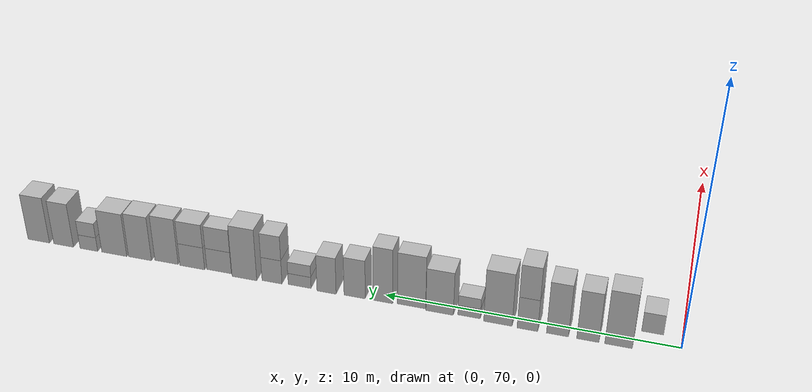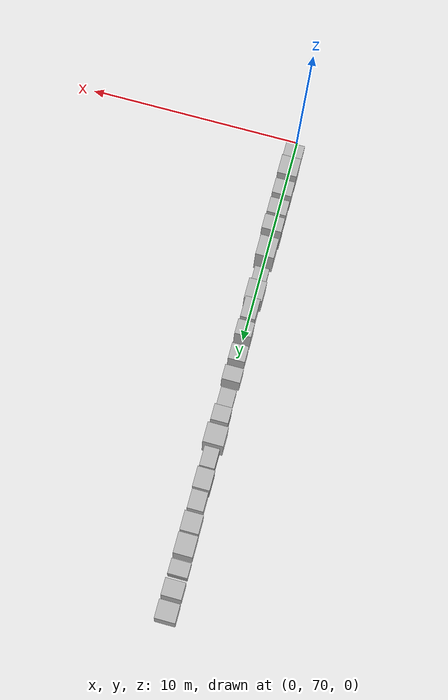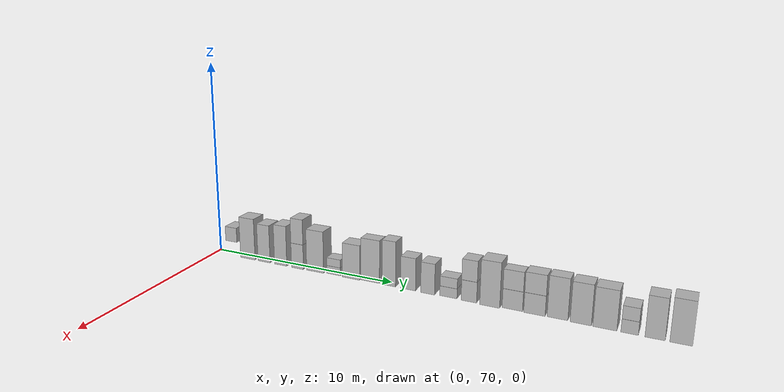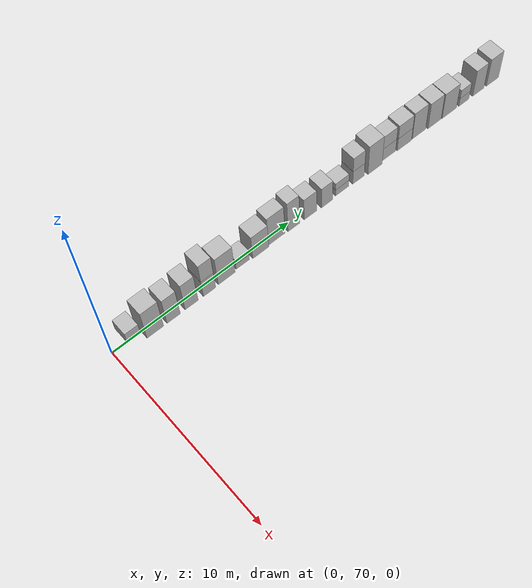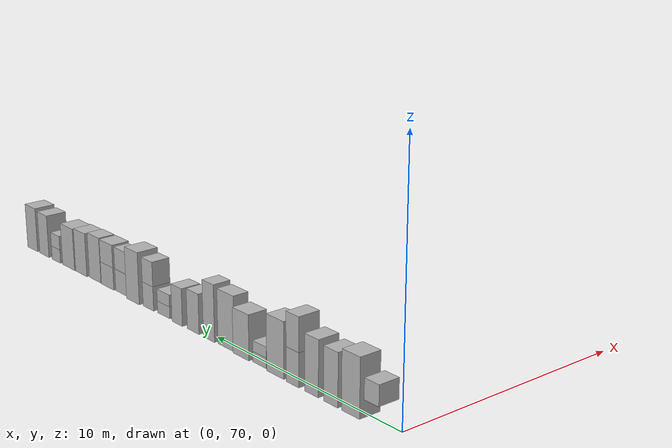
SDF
<sdf version="1.5">
 <world name="default">
  <model name="ground_plane">
   <static>true</static>
   <link name="link">
    <collision name="collision">
     <geometry><plane><normal>0 0 1</normal><size>250 250</size></plane></geometry>
     <surface><friction><ode><mu>1</mu><mu2>1</mu2></ode></friction></surface>
    </collision>
    <visual name="grass">
     <cast_shadows>false</cast_shadows>
     <geometry><mesh><uri>file://grass_plane/meshes/grass_plane.dae</uri></mesh></geometry>
    </visual>
   </link>
  </model>
  <model name="Cardboard_box_top_541">
   <link name="link_0">
    <pose>0 71 0.786534245596 0 0 0</pose>
    <inertial>
     <mass>1</mass>
     <inertia>
      <ixx>0.166667</ixx>
      <ixy>0</ixy>
      <ixz>0</ixz>
      <iyy>0.166667</iyy>
      <iyz>0</iyz>
      <izz>0.166667</izz>
     </inertia>
    </inertial>
    <collision name="collision">
     <geometry>
      <mesh>
       <uri>model://Cardboard_box/meshes/cardboard_box.dae</uri>
       <scale>2.22243146949 1.76237508644 1.96633561399</scale>
      </mesh>
     </geometry>
    </collision>
    <visual name="visual">
     <geometry>
      <mesh>
       <uri>model://Cardboard_box/meshes/cardboard_box.dae</uri>
       <scale>2.22243146949 1.76237508644 1.96633561399</scale>
      </mesh>
     </geometry>
    </visual>
   </link>
   <static>1</static>
  </model>
  <model name="Cardboard_box_542">
   <link name="link_0">
    <pose>0 72 0 0 0 0</pose>
    <inertial>
     <mass>1</mass>
     <inertia>
      <ixx>0.166667</ixx>
      <ixy>0</ixy>
      <ixz>0</ixz>
      <iyy>0.166667</iyy>
      <iyz>0</iyz>
      <izz>0.166667</izz>
     </inertia>
    </inertial>
    <collision name="collision">
     <geometry>
      <mesh>
       <uri>model://Cardboard_box/meshes/cardboard_box.dae</uri>
       <scale>2.27273999263 2.25748142459 5.59448909888</scale>
      </mesh>
     </geometry>
    </collision>
    <visual name="visual">
     <geometry>
      <mesh>
       <uri>model://Cardboard_box/meshes/cardboard_box.dae</uri>
       <scale>2.27273999263 2.25748142459 5.59448909888</scale>
      </mesh>
     </geometry>
    </visual>
   </link>
   <static>1</static>
  </model>
  <model name="Cardboard_box_543">
   <link name="link_0">
    <pose>0 73 0 0 0 0</pose>
    <inertial>
     <mass>1</mass>
     <inertia>
      <ixx>0.166667</ixx>
      <ixy>0</ixy>
      <ixz>0</ixz>
      <iyy>0.166667</iyy>
      <iyz>0</iyz>
      <izz>0.166667</izz>
     </inertia>
    </inertial>
    <collision name="collision">
     <geometry>
      <mesh>
       <uri>model://Cardboard_box/meshes/cardboard_box.dae</uri>
       <scale>2.27920387605 1.83364577513 5.06945876793</scale>
      </mesh>
     </geometry>
    </collision>
    <visual name="visual">
     <geometry>
      <mesh>
       <uri>model://Cardboard_box/meshes/cardboard_box.dae</uri>
       <scale>2.27920387605 1.83364577513 5.06945876793</scale>
      </mesh>
     </geometry>
    </visual>
   </link>
   <static>1</static>
  </model>
  <model name="Cardboard_box_544">
   <link name="link_0">
    <pose>0 74 0 0 0 0</pose>
    <inertial>
     <mass>1</mass>
     <inertia>
      <ixx>0.166667</ixx>
      <ixy>0</ixy>
      <ixz>0</ixz>
      <iyy>0.166667</iyy>
      <iyz>0</iyz>
      <izz>0.166667</izz>
     </inertia>
    </inertial>
    <collision name="collision">
     <geometry>
      <mesh>
       <uri>model://Cardboard_box/meshes/cardboard_box.dae</uri>
       <scale>2.26104952959 1.83376008148 5.36741757266</scale>
      </mesh>
     </geometry>
    </collision>
    <visual name="visual">
     <geometry>
      <mesh>
       <uri>model://Cardboard_box/meshes/cardboard_box.dae</uri>
       <scale>2.26104952959 1.83376008148 5.36741757266</scale>
      </mesh>
     </geometry>
    </visual>
   </link>
   <static>1</static>
  </model>
  <model name="Cardboard_box_545">
   <link name="link_0">
    <pose>0 75 0 0 0 0</pose>
    <inertial>
     <mass>1</mass>
     <inertia>
      <ixx>0.166667</ixx>
      <ixy>0</ixy>
      <ixz>0</ixz>
      <iyy>0.166667</iyy>
      <iyz>0</iyz>
      <izz>0.166667</izz>
     </inertia>
    </inertial>
    <collision name="collision">
     <geometry>
      <mesh>
       <uri>model://Cardboard_box/meshes/cardboard_box.dae</uri>
       <scale>2.31935203963 1.74351807476 3.30247508804</scale>
      </mesh>
     </geometry>
    </collision>
    <visual name="visual">
     <geometry>
      <mesh>
       <uri>model://Cardboard_box/meshes/cardboard_box.dae</uri>
       <scale>2.31935203963 1.74351807476 3.30247508804</scale>
      </mesh>
     </geometry>
    </visual>
   </link>
   <static>1</static>
  </model>
  <model name="Cardboard_box_top_545">
   <link name="link_0">
    <pose>0 75 1.32099003521 0 0 0</pose>
    <inertial>
     <mass>1</mass>
     <inertia>
      <ixx>0.166667</ixx>
      <ixy>0</ixy>
      <ixz>0</ixz>
      <iyy>0.166667</iyy>
      <iyz>0</iyz>
      <izz>0.166667</izz>
     </inertia>
    </inertial>
    <collision name="collision">
     <geometry>
      <mesh>
       <uri>model://Cardboard_box/meshes/cardboard_box.dae</uri>
       <scale>2.31935203963 1.74351807476 3.30247508804</scale>
      </mesh>
     </geometry>
    </collision>
    <visual name="visual">
     <geometry>
      <mesh>
       <uri>model://Cardboard_box/meshes/cardboard_box.dae</uri>
       <scale>2.31935203963 1.74351807476 3.30247508804</scale>
      </mesh>
     </geometry>
    </visual>
   </link>
   <static>1</static>
  </model>
  <model name="Cardboard_box_546">
   <link name="link_0">
    <pose>0 76 0 0 0 0</pose>
    <inertial>
     <mass>1</mass>
     <inertia>
      <ixx>0.166667</ixx>
      <ixy>0</ixy>
      <ixz>0</ixz>
      <iyy>0.166667</iyy>
      <iyz>0</iyz>
      <izz>0.166667</izz>
     </inertia>
    </inertial>
    <collision name="collision">
     <geometry>
      <mesh>
       <uri>model://Cardboard_box/meshes/cardboard_box.dae</uri>
       <scale>2.16315820871 2.4252779616 5.46713787883</scale>
      </mesh>
     </geometry>
    </collision>
    <visual name="visual">
     <geometry>
      <mesh>
       <uri>model://Cardboard_box/meshes/cardboard_box.dae</uri>
       <scale>2.16315820871 2.4252779616 5.46713787883</scale>
      </mesh>
     </geometry>
    </visual>
   </link>
   <static>1</static>
  </model>
  <model name="Cardboard_box_547">
   <link name="link_0">
    <pose>0 77 0 0 0 0</pose>
    <inertial>
     <mass>1</mass>
     <inertia>
      <ixx>0.166667</ixx>
      <ixy>0</ixy>
      <ixz>0</ixz>
      <iyy>0.166667</iyy>
      <iyz>0</iyz>
      <izz>0.166667</izz>
     </inertia>
    </inertial>
    <collision name="collision">
     <geometry>
      <mesh>
       <uri>model://Cardboard_box/meshes/cardboard_box.dae</uri>
       <scale>1.72668834568 1.93948116619 1.03902439038</scale>
      </mesh>
     </geometry>
    </collision>
    <visual name="visual">
     <geometry>
      <mesh>
       <uri>model://Cardboard_box/meshes/cardboard_box.dae</uri>
       <scale>1.72668834568 1.93948116619 1.03902439038</scale>
      </mesh>
     </geometry>
    </visual>
   </link>
   <static>1</static>
  </model>
  <model name="Cardboard_box_top_547">
   <link name="link_0">
    <pose>0 77 0.415609756152 0 0 0</pose>
    <inertial>
     <mass>1</mass>
     <inertia>
      <ixx>0.166667</ixx>
      <ixy>0</ixy>
      <ixz>0</ixz>
      <iyy>0.166667</iyy>
      <iyz>0</iyz>
      <izz>0.166667</izz>
     </inertia>
    </inertial>
    <collision name="collision">
     <geometry>
      <mesh>
       <uri>model://Cardboard_box/meshes/cardboard_box.dae</uri>
       <scale>1.72668834568 1.93948116619 1.03902439038</scale>
      </mesh>
     </geometry>
    </collision>
    <visual name="visual">
     <geometry>
      <mesh>
       <uri>model://Cardboard_box/meshes/cardboard_box.dae</uri>
       <scale>1.72668834568 1.93948116619 1.03902439038</scale>
      </mesh>
     </geometry>
    </visual>
   </link>
   <static>1</static>
  </model>
  <model name="Cardboard_box_548">
   <link name="link_0">
    <pose>0 78 0 0 0 0</pose>
    <inertial>
     <mass>1</mass>
     <inertia>
      <ixx>0.166667</ixx>
      <ixy>0</ixy>
      <ixz>0</ixz>
      <iyy>0.166667</iyy>
      <iyz>0</iyz>
      <izz>0.166667</izz>
     </inertia>
    </inertial>
    <collision name="collision">
     <geometry>
      <mesh>
       <uri>model://Cardboard_box/meshes/cardboard_box.dae</uri>
       <scale>2.08987775018 2.39225351594 4.48436766433</scale>
      </mesh>
     </geometry>
    </collision>
    <visual name="visual">
     <geometry>
      <mesh>
       <uri>model://Cardboard_box/meshes/cardboard_box.dae</uri>
       <scale>2.08987775018 2.39225351594 4.48436766433</scale>
      </mesh>
     </geometry>
    </visual>
   </link>
   <static>1</static>
  </model>
  <model name="Cardboard_box_549">
   <link name="link_0">
    <pose>0 79 0 0 0 0</pose>
    <inertial>
     <mass>1</mass>
     <inertia>
      <ixx>0.166667</ixx>
      <ixy>0</ixy>
      <ixz>0</ixz>
      <iyy>0.166667</iyy>
      <iyz>0</iyz>
      <izz>0.166667</izz>
     </inertia>
    </inertial>
    <collision name="collision">
     <geometry>
      <mesh>
       <uri>model://Cardboard_box/meshes/cardboard_box.dae</uri>
       <scale>1.72093482058 2.4869732673 5.4734018262</scale>
      </mesh>
     </geometry>
    </collision>
    <visual name="visual">
     <geometry>
      <mesh>
       <uri>model://Cardboard_box/meshes/cardboard_box.dae</uri>
       <scale>1.72093482058 2.4869732673 5.4734018262</scale>
      </mesh>
     </geometry>
    </visual>
   </link>
   <static>1</static>
  </model>
  <model name="Cardboard_box_550">
   <link name="link_0">
    <pose>0 80 0 0 0 0</pose>
    <inertial>
     <mass>1</mass>
     <inertia>
      <ixx>0.166667</ixx>
      <ixy>0</ixy>
      <ixz>0</ixz>
      <iyy>0.166667</iyy>
      <iyz>0</iyz>
      <izz>0.166667</izz>
     </inertia>
    </inertial>
    <collision name="collision">
     <geometry>
      <mesh>
       <uri>model://Cardboard_box/meshes/cardboard_box.dae</uri>
       <scale>1.93379157234 1.77051491757 5.73602014364</scale>
      </mesh>
     </geometry>
    </collision>
    <visual name="visual">
     <geometry>
      <mesh>
       <uri>model://Cardboard_box/meshes/cardboard_box.dae</uri>
       <scale>1.93379157234 1.77051491757 5.73602014364</scale>
      </mesh>
     </geometry>
    </visual>
   </link>
   <static>1</static>
  </model>
  <model name="Cardboard_box_551">
   <link name="link_0">
    <pose>0 81 0 0 0 0</pose>
    <inertial>
     <mass>1</mass>
     <inertia>
      <ixx>0.166667</ixx>
      <ixy>0</ixy>
      <ixz>0</ixz>
      <iyy>0.166667</iyy>
      <iyz>0</iyz>
      <izz>0.166667</izz>
     </inertia>
    </inertial>
    <collision name="collision">
     <geometry>
      <mesh>
       <uri>model://Cardboard_box/meshes/cardboard_box.dae</uri>
       <scale>1.96736491615 1.91165425711 4.08183193037</scale>
      </mesh>
     </geometry>
    </collision>
    <visual name="visual">
     <geometry>
      <mesh>
       <uri>model://Cardboard_box/meshes/cardboard_box.dae</uri>
       <scale>1.96736491615 1.91165425711 4.08183193037</scale>
      </mesh>
     </geometry>
    </visual>
   </link>
   <static>1</static>
  </model>
  <model name="Cardboard_box_552">
   <link name="link_0">
    <pose>0 82 0 0 0 0</pose>
    <inertial>
     <mass>1</mass>
     <inertia>
      <ixx>0.166667</ixx>
      <ixy>0</ixy>
      <ixz>0</ixz>
      <iyy>0.166667</iyy>
      <iyz>0</iyz>
      <izz>0.166667</izz>
     </inertia>
    </inertial>
    <collision name="collision">
     <geometry>
      <mesh>
       <uri>model://Cardboard_box/meshes/cardboard_box.dae</uri>
       <scale>2.14970825815 1.73907848819 3.85460406056</scale>
      </mesh>
     </geometry>
    </collision>
    <visual name="visual">
     <geometry>
      <mesh>
       <uri>model://Cardboard_box/meshes/cardboard_box.dae</uri>
       <scale>2.14970825815 1.73907848819 3.85460406056</scale>
      </mesh>
     </geometry>
    </visual>
   </link>
   <static>1</static>
  </model>
  <model name="Cardboard_box_553">
   <link name="link_0">
    <pose>0 83 0 0 0 0</pose>
    <inertial>
     <mass>1</mass>
     <inertia>
      <ixx>0.166667</ixx>
      <ixy>0</ixy>
      <ixz>0</ixz>
      <iyy>0.166667</iyy>
      <iyz>0</iyz>
      <izz>0.166667</izz>
     </inertia>
    </inertial>
    <collision name="collision">
     <geometry>
      <mesh>
       <uri>model://Cardboard_box/meshes/cardboard_box.dae</uri>
       <scale>1.83003617201 2.10910806651 1.22664083777</scale>
      </mesh>
     </geometry>
    </collision>
    <visual name="visual">
     <geometry>
      <mesh>
       <uri>model://Cardboard_box/meshes/cardboard_box.dae</uri>
       <scale>1.83003617201 2.10910806651 1.22664083777</scale>
      </mesh>
     </geometry>
    </visual>
   </link>
   <static>1</static>
  </model>
  <model name="Cardboard_box_top_553">
   <link name="link_0">
    <pose>0 83 0.49065633511 0 0 0</pose>
    <inertial>
     <mass>1</mass>
     <inertia>
      <ixx>0.166667</ixx>
      <ixy>0</ixy>
      <ixz>0</ixz>
      <iyy>0.166667</iyy>
      <iyz>0</iyz>
      <izz>0.166667</izz>
     </inertia>
    </inertial>
    <collision name="collision">
     <geometry>
      <mesh>
       <uri>model://Cardboard_box/meshes/cardboard_box.dae</uri>
       <scale>1.83003617201 2.10910806651 1.22664083777</scale>
      </mesh>
     </geometry>
    </collision>
    <visual name="visual">
     <geometry>
      <mesh>
       <uri>model://Cardboard_box/meshes/cardboard_box.dae</uri>
       <scale>1.83003617201 2.10910806651 1.22664083777</scale>
      </mesh>
     </geometry>
    </visual>
   </link>
   <static>1</static>
  </model>
  <model name="Cardboard_box_554">
   <link name="link_0">
    <pose>0 84 0 0 0 0</pose>
    <inertial>
     <mass>1</mass>
     <inertia>
      <ixx>0.166667</ixx>
      <ixy>0</ixy>
      <ixz>0</ixz>
      <iyy>0.166667</iyy>
      <iyz>0</iyz>
      <izz>0.166667</izz>
     </inertia>
    </inertial>
    <collision name="collision">
     <geometry>
      <mesh>
       <uri>model://Cardboard_box/meshes/cardboard_box.dae</uri>
       <scale>2.04126254588 1.85270935831 2.54384727338</scale>
      </mesh>
     </geometry>
    </collision>
    <visual name="visual">
     <geometry>
      <mesh>
       <uri>model://Cardboard_box/meshes/cardboard_box.dae</uri>
       <scale>2.04126254588 1.85270935831 2.54384727338</scale>
      </mesh>
     </geometry>
    </visual>
   </link>
   <static>1</static>
  </model>
  <model name="Cardboard_box_top_554">
   <link name="link_0">
    <pose>0 84 1.01753890935 0 0 0</pose>
    <inertial>
     <mass>1</mass>
     <inertia>
      <ixx>0.166667</ixx>
      <ixy>0</ixy>
      <ixz>0</ixz>
      <iyy>0.166667</iyy>
      <iyz>0</iyz>
      <izz>0.166667</izz>
     </inertia>
    </inertial>
    <collision name="collision">
     <geometry>
      <mesh>
       <uri>model://Cardboard_box/meshes/cardboard_box.dae</uri>
       <scale>2.04126254588 1.85270935831 2.54384727338</scale>
      </mesh>
     </geometry>
    </collision>
    <visual name="visual">
     <geometry>
      <mesh>
       <uri>model://Cardboard_box/meshes/cardboard_box.dae</uri>
       <scale>2.04126254588 1.85270935831 2.54384727338</scale>
      </mesh>
     </geometry>
    </visual>
   </link>
   <static>1</static>
  </model>
  <model name="Cardboard_box_555">
   <link name="link_0">
    <pose>0 85 0 0 0 0</pose>
    <inertial>
     <mass>1</mass>
     <inertia>
      <ixx>0.166667</ixx>
      <ixy>0</ixy>
      <ixz>0</ixz>
      <iyy>0.166667</iyy>
      <iyz>0</iyz>
      <izz>0.166667</izz>
     </inertia>
    </inertial>
    <collision name="collision">
     <geometry>
      <mesh>
       <uri>model://Cardboard_box/meshes/cardboard_box.dae</uri>
       <scale>2.40320530163 2.31998849345 5.49364410006</scale>
      </mesh>
     </geometry>
    </collision>
    <visual name="visual">
     <geometry>
      <mesh>
       <uri>model://Cardboard_box/meshes/cardboard_box.dae</uri>
       <scale>2.40320530163 2.31998849345 5.49364410006</scale>
      </mesh>
     </geometry>
    </visual>
   </link>
   <static>1</static>
  </model>
  <model name="Cardboard_box_556">
   <link name="link_0">
    <pose>0 86 0 0 0 0</pose>
    <inertial>
     <mass>1</mass>
     <inertia>
      <ixx>0.166667</ixx>
      <ixy>0</ixy>
      <ixz>0</ixz>
      <iyy>0.166667</iyy>
      <iyz>0</iyz>
      <izz>0.166667</izz>
     </inertia>
    </inertial>
    <collision name="collision">
     <geometry>
      <mesh>
       <uri>model://Cardboard_box/meshes/cardboard_box.dae</uri>
       <scale>1.75762332393 2.32527644797 2.33850517873</scale>
      </mesh>
     </geometry>
    </collision>
    <visual name="visual">
     <geometry>
      <mesh>
       <uri>model://Cardboard_box/meshes/cardboard_box.dae</uri>
       <scale>1.75762332393 2.32527644797 2.33850517873</scale>
      </mesh>
     </geometry>
    </visual>
   </link>
   <static>1</static>
  </model>
  <model name="Cardboard_box_top_556">
   <link name="link_0">
    <pose>0 86 0.935402071492 0 0 0</pose>
    <inertial>
     <mass>1</mass>
     <inertia>
      <ixx>0.166667</ixx>
      <ixy>0</ixy>
      <ixz>0</ixz>
      <iyy>0.166667</iyy>
      <iyz>0</iyz>
      <izz>0.166667</izz>
     </inertia>
    </inertial>
    <collision name="collision">
     <geometry>
      <mesh>
       <uri>model://Cardboard_box/meshes/cardboard_box.dae</uri>
       <scale>1.75762332393 2.32527644797 2.33850517873</scale>
      </mesh>
     </geometry>
    </collision>
    <visual name="visual">
     <geometry>
      <mesh>
       <uri>model://Cardboard_box/meshes/cardboard_box.dae</uri>
       <scale>1.75762332393 2.32527644797 2.33850517873</scale>
      </mesh>
     </geometry>
    </visual>
   </link>
   <static>1</static>
  </model>
  <model name="Cardboard_box_557">
   <link name="link_0">
    <pose>0 87 0 0 0 0</pose>
    <inertial>
     <mass>1</mass>
     <inertia>
      <ixx>0.166667</ixx>
      <ixy>0</ixy>
      <ixz>0</ixz>
      <iyy>0.166667</iyy>
      <iyz>0</iyz>
      <izz>0.166667</izz>
     </inertia>
    </inertial>
    <collision name="collision">
     <geometry>
      <mesh>
       <uri>model://Cardboard_box/meshes/cardboard_box.dae</uri>
       <scale>2.00411682283 2.37967496607 2.4186702359</scale>
      </mesh>
     </geometry>
    </collision>
    <visual name="visual">
     <geometry>
      <mesh>
       <uri>model://Cardboard_box/meshes/cardboard_box.dae</uri>
       <scale>2.00411682283 2.37967496607 2.4186702359</scale>
      </mesh>
     </geometry>
    </visual>
   </link>
   <static>1</static>
  </model>
  <model name="Cardboard_box_top_557">
   <link name="link_0">
    <pose>0 87 0.967468094361 0 0 0</pose>
    <inertial>
     <mass>1</mass>
     <inertia>
      <ixx>0.166667</ixx>
      <ixy>0</ixy>
      <ixz>0</ixz>
      <iyy>0.166667</iyy>
      <iyz>0</iyz>
      <izz>0.166667</izz>
     </inertia>
    </inertial>
    <collision name="collision">
     <geometry>
      <mesh>
       <uri>model://Cardboard_box/meshes/cardboard_box.dae</uri>
       <scale>2.00411682283 2.37967496607 2.4186702359</scale>
      </mesh>
     </geometry>
    </collision>
    <visual name="visual">
     <geometry>
      <mesh>
       <uri>model://Cardboard_box/meshes/cardboard_box.dae</uri>
       <scale>2.00411682283 2.37967496607 2.4186702359</scale>
      </mesh>
     </geometry>
    </visual>
   </link>
   <static>1</static>
  </model>
  <model name="Cardboard_box_558">
   <link name="link_0">
    <pose>0 88 0 0 0 0</pose>
    <inertial>
     <mass>1</mass>
     <inertia>
      <ixx>0.166667</ixx>
      <ixy>0</ixy>
      <ixz>0</ixz>
      <iyy>0.166667</iyy>
      <iyz>0</iyz>
      <izz>0.166667</izz>
     </inertia>
    </inertial>
    <collision name="collision">
     <geometry>
      <mesh>
       <uri>model://Cardboard_box/meshes/cardboard_box.dae</uri>
       <scale>1.87134853642 2.25476277438 4.90588126137</scale>
      </mesh>
     </geometry>
    </collision>
    <visual name="visual">
     <geometry>
      <mesh>
       <uri>model://Cardboard_box/meshes/cardboard_box.dae</uri>
       <scale>1.87134853642 2.25476277438 4.90588126137</scale>
      </mesh>
     </geometry>
    </visual>
   </link>
   <static>1</static>
  </model>
  <model name="Cardboard_box_559">
   <link name="link_0">
    <pose>0 89 0 0 0 0</pose>
    <inertial>
     <mass>1</mass>
     <inertia>
      <ixx>0.166667</ixx>
      <ixy>0</ixy>
      <ixz>0</ixz>
      <iyy>0.166667</iyy>
      <iyz>0</iyz>
      <izz>0.166667</izz>
     </inertia>
    </inertial>
    <collision name="collision">
     <geometry>
      <mesh>
       <uri>model://Cardboard_box/meshes/cardboard_box.dae</uri>
       <scale>2.16831405858 2.24850722092 4.73773633212</scale>
      </mesh>
     </geometry>
    </collision>
    <visual name="visual">
     <geometry>
      <mesh>
       <uri>model://Cardboard_box/meshes/cardboard_box.dae</uri>
       <scale>2.16831405858 2.24850722092 4.73773633212</scale>
      </mesh>
     </geometry>
    </visual>
   </link>
   <static>1</static>
  </model>
  <model name="Cardboard_box_560">
   <link name="link_0">
    <pose>0 90 0 0 0 0</pose>
    <inertial>
     <mass>1</mass>
     <inertia>
      <ixx>0.166667</ixx>
      <ixy>0</ixy>
      <ixz>0</ixz>
      <iyy>0.166667</iyy>
      <iyz>0</iyz>
      <izz>0.166667</izz>
     </inertia>
    </inertial>
    <collision name="collision">
     <geometry>
      <mesh>
       <uri>model://Cardboard_box/meshes/cardboard_box.dae</uri>
       <scale>2.24022421006 2.47232390862 4.61097409316</scale>
      </mesh>
     </geometry>
    </collision>
    <visual name="visual">
     <geometry>
      <mesh>
       <uri>model://Cardboard_box/meshes/cardboard_box.dae</uri>
       <scale>2.24022421006 2.47232390862 4.61097409316</scale>
      </mesh>
     </geometry>
    </visual>
   </link>
   <static>1</static>
  </model>
  <model name="Cardboard_box_561">
   <link name="link_0">
    <pose>0 91 0 0 0 0</pose>
    <inertial>
     <mass>1</mass>
     <inertia>
      <ixx>0.166667</ixx>
      <ixy>0</ixy>
      <ixz>0</ixz>
      <iyy>0.166667</iyy>
      <iyz>0</iyz>
      <izz>0.166667</izz>
     </inertia>
    </inertial>
    <collision name="collision">
     <geometry>
      <mesh>
       <uri>model://Cardboard_box/meshes/cardboard_box.dae</uri>
       <scale>2.29486783059 1.76188162446 1.5199177915</scale>
      </mesh>
     </geometry>
    </collision>
    <visual name="visual">
     <geometry>
      <mesh>
       <uri>model://Cardboard_box/meshes/cardboard_box.dae</uri>
       <scale>2.29486783059 1.76188162446 1.5199177915</scale>
      </mesh>
     </geometry>
    </visual>
   </link>
   <static>1</static>
  </model>
  <model name="Cardboard_box_top_561">
   <link name="link_0">
    <pose>0 91 0.6079671166 0 0 0</pose>
    <inertial>
     <mass>1</mass>
     <inertia>
      <ixx>0.166667</ixx>
      <ixy>0</ixy>
      <ixz>0</ixz>
      <iyy>0.166667</iyy>
      <iyz>0</iyz>
      <izz>0.166667</izz>
     </inertia>
    </inertial>
    <collision name="collision">
     <geometry>
      <mesh>
       <uri>model://Cardboard_box/meshes/cardboard_box.dae</uri>
       <scale>2.29486783059 1.76188162446 1.5199177915</scale>
      </mesh>
     </geometry>
    </collision>
    <visual name="visual">
     <geometry>
      <mesh>
       <uri>model://Cardboard_box/meshes/cardboard_box.dae</uri>
       <scale>2.29486783059 1.76188162446 1.5199177915</scale>
      </mesh>
     </geometry>
    </visual>
   </link>
   <static>1</static>
  </model>
  <model name="Cardboard_box_562">
   <link name="link_0">
    <pose>0 92 0 0 0 0</pose>
    <inertial>
     <mass>1</mass>
     <inertia>
      <ixx>0.166667</ixx>
      <ixy>0</ixy>
      <ixz>0</ixz>
      <iyy>0.166667</iyy>
      <iyz>0</iyz>
      <izz>0.166667</izz>
     </inertia>
    </inertial>
    <collision name="collision">
     <geometry>
      <mesh>
       <uri>model://Cardboard_box/meshes/cardboard_box.dae</uri>
       <scale>2.34916600792 1.98348076946 4.72664214982</scale>
      </mesh>
     </geometry>
    </collision>
    <visual name="visual">
     <geometry>
      <mesh>
       <uri>model://Cardboard_box/meshes/cardboard_box.dae</uri>
       <scale>2.34916600792 1.98348076946 4.72664214982</scale>
      </mesh>
     </geometry>
    </visual>
   </link>
   <static>1</static>
  </model>
  <model name="Cardboard_box_563">
   <link name="link_0">
    <pose>0 93 0 0 0 0</pose>
    <inertial>
     <mass>1</mass>
     <inertia>
      <ixx>0.166667</ixx>
      <ixy>0</ixy>
      <ixz>0</ixz>
      <iyy>0.166667</iyy>
      <iyz>0</iyz>
      <izz>0.166667</izz>
     </inertia>
    </inertial>
    <collision name="collision">
     <geometry>
      <mesh>
       <uri>model://Cardboard_box/meshes/cardboard_box.dae</uri>
       <scale>2.39087465149 2.18167453313 4.95367445848</scale>
      </mesh>
     </geometry>
    </collision>
    <visual name="visual">
     <geometry>
      <mesh>
       <uri>model://Cardboard_box/meshes/cardboard_box.dae</uri>
       <scale>2.39087465149 2.18167453313 4.95367445848</scale>
      </mesh>
     </geometry>
    </visual>
   </link>
   <static>1</static>
  </model>
 </world>
</sdf>
